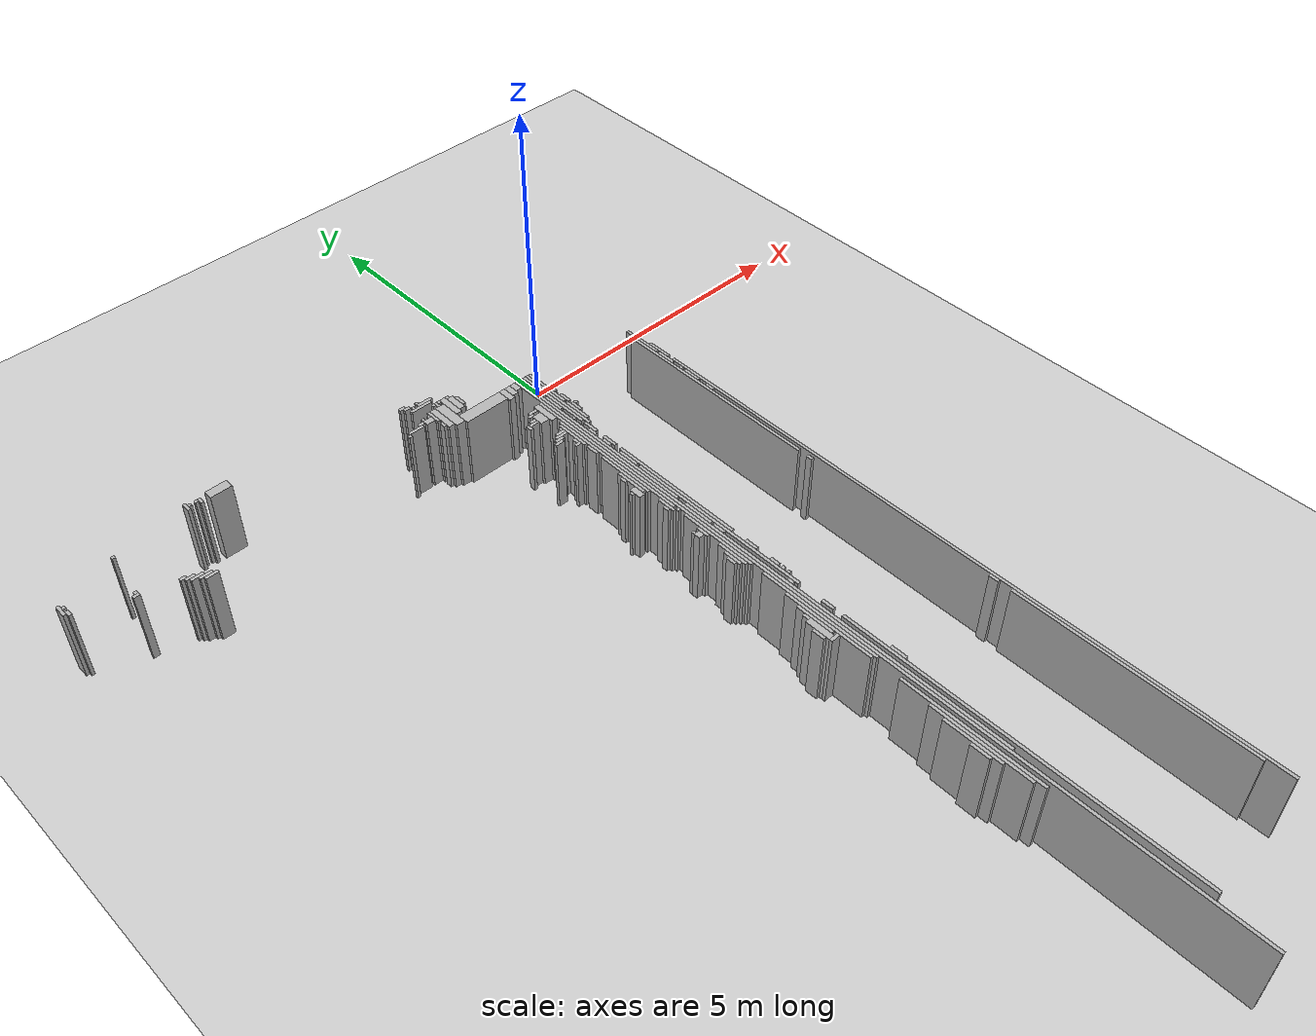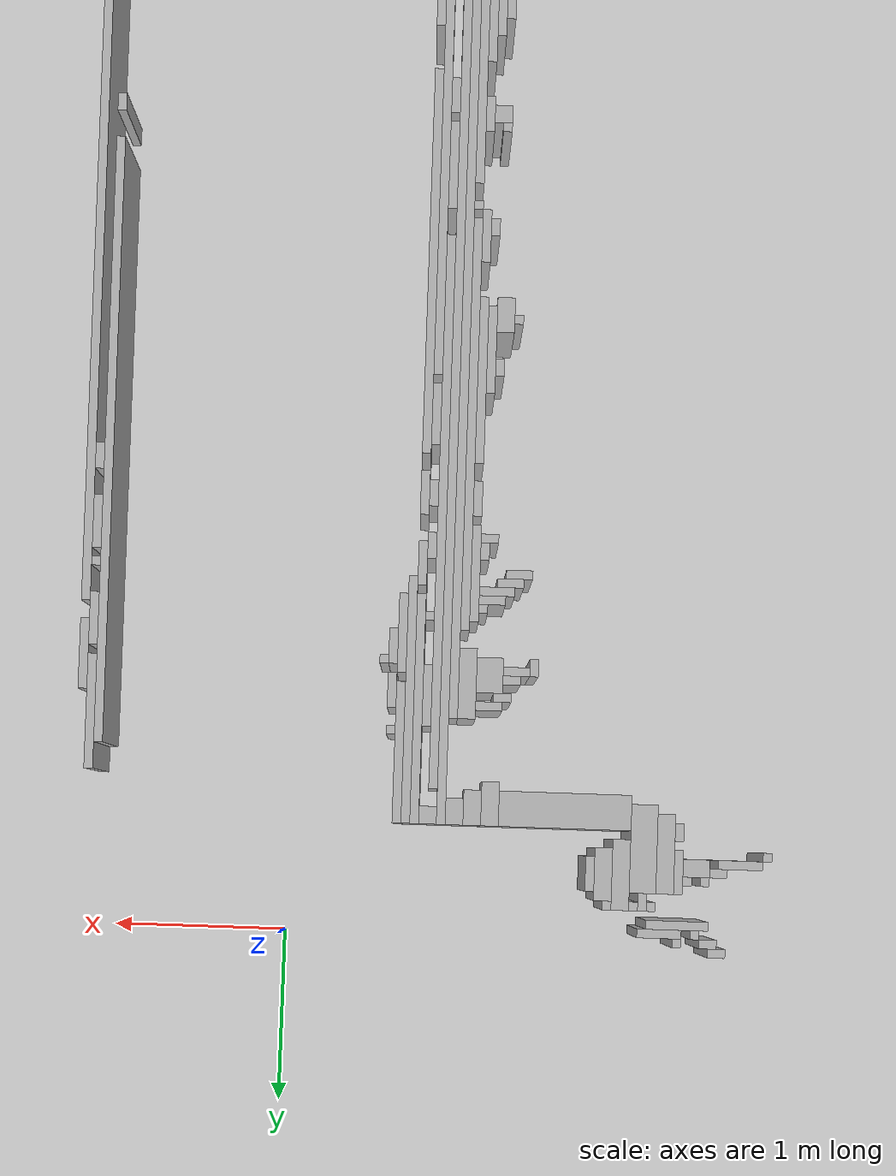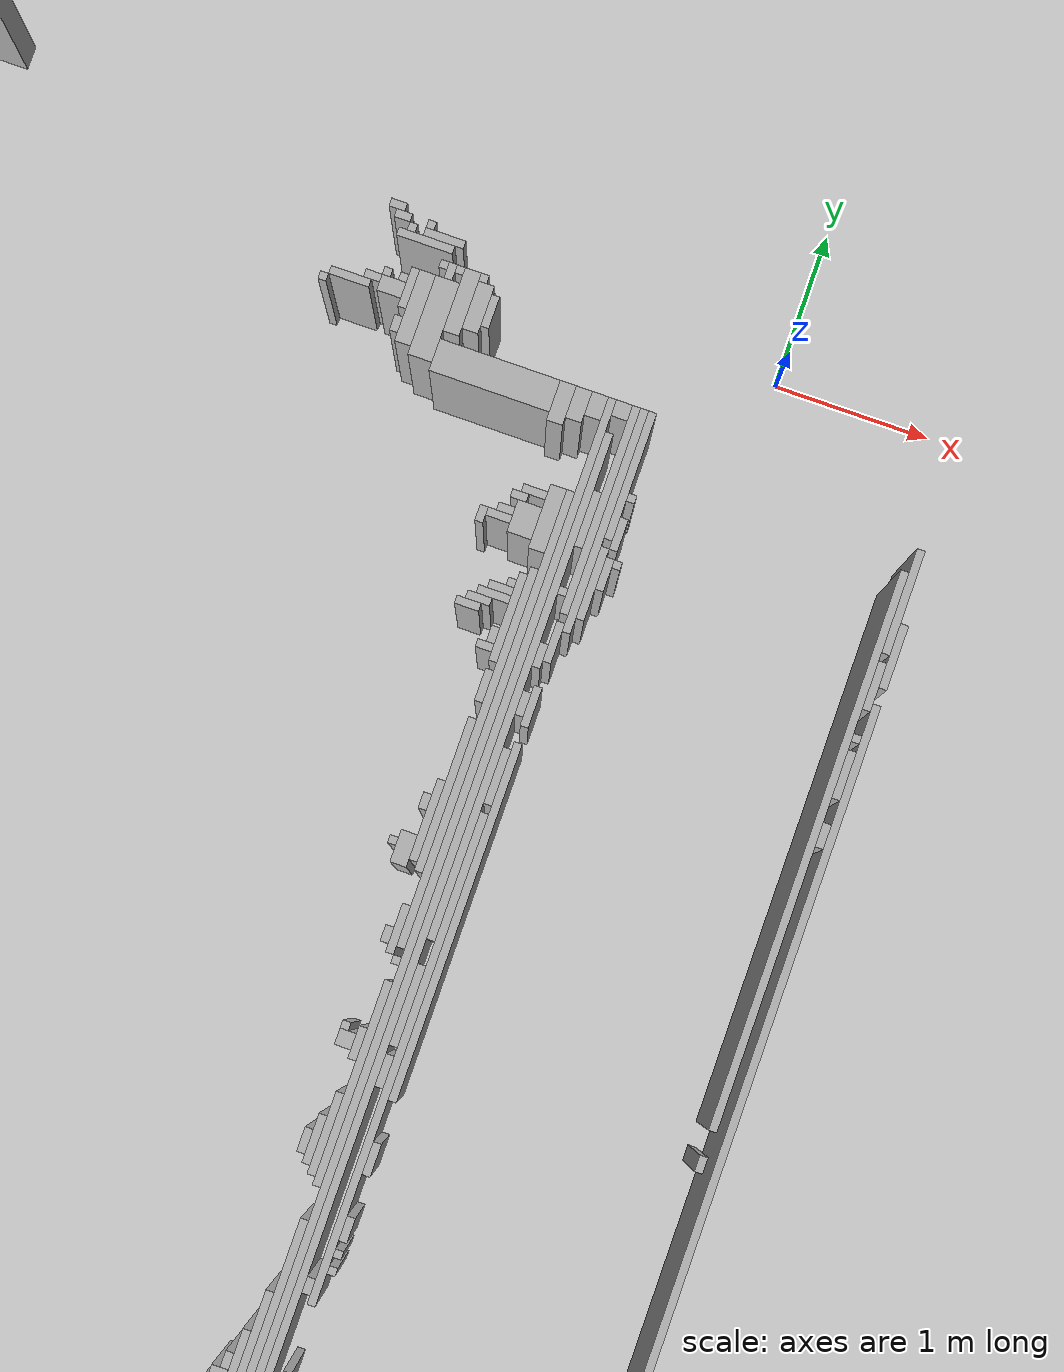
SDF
<sdf version="1.6">
 <world name="d10_floor">
  <include><uri>model://sun</uri></include>
  <include><uri>model://ground_plane</uri></include>
  <model name="d10_walls">
   <static>true</static>
   <link name="w726">
    <pose>-0.950 -7.245 0.60 0 0 0</pose>
    <collision name="c"><geometry><box><size>0.050 12.000 1.20</size></box></geometry></collision>
    <visual name="v">
     <geometry><box><size>0.050 12.000 1.20</size></box></geometry>
     <material><ambient>0.6 0.6 0.6 1</ambient><diffuse>0.7 0.7 0.7 1</diffuse></material>
    </visual>
   </link>
   <link name="w893">
    <pose>-0.800 -9.670 0.60 0 0 0</pose>
    <collision name="c"><geometry><box><size>0.050 5.450 1.20</size></box></geometry></collision>
    <visual name="v">
     <geometry><box><size>0.050 5.450 1.20</size></box></geometry>
     <material><ambient>0.6 0.6 0.6 1</ambient><diffuse>0.7 0.7 0.7 1</diffuse></material>
    </visual>
   </link>
   <link name="w902">
    <pose>1.150 -7.020 0.60 0 0 0</pose>
    <collision name="c"><geometry><box><size>0.050 10.350 1.20</size></box></geometry></collision>
    <visual name="v">
     <geometry><box><size>0.050 10.350 1.20</size></box></geometry>
     <material><ambient>0.6 0.6 0.6 1</ambient><diffuse>0.7 0.7 0.7 1</diffuse></material>
    </visual>
   </link>
   <link name="w935">
    <pose>1.100 -9.970 0.60 0 0 0</pose>
    <collision name="c"><geometry><box><size>0.050 3.650 1.20</size></box></geometry></collision>
    <visual name="v">
     <geometry><box><size>0.050 3.650 1.20</size></box></geometry>
     <material><ambient>0.6 0.6 0.6 1</ambient><diffuse>0.7 0.7 0.7 1</diffuse></material>
    </visual>
   </link>
   <link name="w1038">
    <pose>-1.050 -9.195 0.60 0 0 0</pose>
    <collision name="c"><geometry><box><size>0.050 2.200 1.20</size></box></geometry></collision>
    <visual name="v">
     <geometry><box><size>0.050 2.200 1.20</size></box></geometry>
     <material><ambient>0.6 0.6 0.6 1</ambient><diffuse>0.7 0.7 0.7 1</diffuse></material>
    </visual>
   </link>
   <link name="w1042">
    <pose>-1.100 -9.370 0.60 0 0 0</pose>
    <collision name="c"><geometry><box><size>0.050 1.550 1.20</size></box></geometry></collision>
    <visual name="v">
     <geometry><box><size>0.050 1.550 1.20</size></box></geometry>
     <material><ambient>0.6 0.6 0.6 1</ambient><diffuse>0.7 0.7 0.7 1</diffuse></material>
    </visual>
   </link>
   <link name="w1051">
    <pose>-1.150 -9.295 0.60 0 0 0</pose>
    <collision name="c"><geometry><box><size>0.050 0.900 1.20</size></box></geometry></collision>
    <visual name="v">
     <geometry><box><size>0.050 0.900 1.20</size></box></geometry>
     <material><ambient>0.6 0.6 0.6 1</ambient><diffuse>0.7 0.7 0.7 1</diffuse></material>
    </visual>
   </link>
   <link name="w1052">
    <pose>-0.900 -5.170 0.60 0 0 0</pose>
    <collision name="c"><geometry><box><size>0.050 9.050 1.20</size></box></geometry></collision>
    <visual name="v">
     <geometry><box><size>0.050 9.050 1.20</size></box></geometry>
     <material><ambient>0.6 0.6 0.6 1</ambient><diffuse>0.7 0.7 0.7 1</diffuse></material>
    </visual>
   </link>
   <link name="w1055">
    <pose>-1.200 -9.445 0.60 0 0 0</pose>
    <collision name="c"><geometry><box><size>0.050 0.300 1.20</size></box></geometry></collision>
    <visual name="v">
     <geometry><box><size>0.050 0.300 1.20</size></box></geometry>
     <material><ambient>0.6 0.6 0.6 1</ambient><diffuse>0.7 0.7 0.7 1</diffuse></material>
    </visual>
   </link>
   <link name="w1078">
    <pose>-0.750 -7.820 0.60 0 0 0</pose>
    <collision name="c"><geometry><box><size>0.050 0.250 1.20</size></box></geometry></collision>
    <visual name="v">
     <geometry><box><size>0.050 0.250 1.20</size></box></geometry>
     <material><ambient>0.6 0.6 0.6 1</ambient><diffuse>0.7 0.7 0.7 1</diffuse></material>
    </visual>
   </link>
   <link name="w1079">
    <pose>1.100 -7.870 0.60 0 0 0</pose>
    <collision name="c"><geometry><box><size>0.050 0.150 1.20</size></box></geometry></collision>
    <visual name="v">
     <geometry><box><size>0.050 0.150 1.20</size></box></geometry>
     <material><ambient>0.6 0.6 0.6 1</ambient><diffuse>0.7 0.7 0.7 1</diffuse></material>
    </visual>
   </link>
   <link name="w1087">
    <pose>-1.000 -6.720 0.60 0 0 0</pose>
    <collision name="c"><geometry><box><size>0.050 1.950 1.20</size></box></geometry></collision>
    <visual name="v">
     <geometry><box><size>0.050 1.950 1.20</size></box></geometry>
     <material><ambient>0.6 0.6 0.6 1</ambient><diffuse>0.7 0.7 0.7 1</diffuse></material>
    </visual>
   </link>
   <link name="w1089">
    <pose>-1.050 -6.920 0.60 0 0 0</pose>
    <collision name="c"><geometry><box><size>0.050 1.450 1.20</size></box></geometry></collision>
    <visual name="v">
     <geometry><box><size>0.050 1.450 1.20</size></box></geometry>
     <material><ambient>0.6 0.6 0.6 1</ambient><diffuse>0.7 0.7 0.7 1</diffuse></material>
    </visual>
   </link>
   <link name="w1101">
    <pose>-1.150 -7.120 0.60 0 0 0</pose>
    <collision name="c"><geometry><box><size>0.150 0.050 1.20</size></box></geometry></collision>
    <visual name="v">
     <geometry><box><size>0.150 0.050 1.20</size></box></geometry>
     <material><ambient>0.6 0.6 0.6 1</ambient><diffuse>0.7 0.7 0.7 1</diffuse></material>
    </visual>
   </link>
   <link name="w1103">
    <pose>-1.175 -6.895 0.60 0 0 0</pose>
    <collision name="c"><geometry><box><size>0.100 0.400 1.20</size></box></geometry></collision>
    <visual name="v">
     <geometry><box><size>0.100 0.400 1.20</size></box></geometry>
     <material><ambient>0.6 0.6 0.6 1</ambient><diffuse>0.7 0.7 0.7 1</diffuse></material>
    </visual>
   </link>
   <link name="w1104">
    <pose>-1.250 -6.945 0.60 0 0 0</pose>
    <collision name="c"><geometry><box><size>0.050 0.200 1.20</size></box></geometry></collision>
    <visual name="v">
     <geometry><box><size>0.050 0.200 1.20</size></box></geometry>
     <material><ambient>0.6 0.6 0.6 1</ambient><diffuse>0.7 0.7 0.7 1</diffuse></material>
    </visual>
   </link>
   <link name="w1105">
    <pose>-1.100 -6.745 0.60 0 0 0</pose>
    <collision name="c"><geometry><box><size>0.050 0.600 1.20</size></box></geometry></collision>
    <visual name="v">
     <geometry><box><size>0.050 0.600 1.20</size></box></geometry>
     <material><ambient>0.6 0.6 0.6 1</ambient><diffuse>0.7 0.7 0.7 1</diffuse></material>
    </visual>
   </link>
   <link name="w1109">
    <pose>-0.800 -6.695 0.60 0 0 0</pose>
    <collision name="c"><geometry><box><size>0.050 0.200 1.20</size></box></geometry></collision>
    <visual name="v">
     <geometry><box><size>0.050 0.200 1.20</size></box></geometry>
     <material><ambient>0.6 0.6 0.6 1</ambient><diffuse>0.7 0.7 0.7 1</diffuse></material>
    </visual>
   </link>
   <link name="w1112">
    <pose>-1.150 -6.645 0.60 0 0 0</pose>
    <collision name="c"><geometry><box><size>0.050 0.100 1.20</size></box></geometry></collision>
    <visual name="v">
     <geometry><box><size>0.050 0.100 1.20</size></box></geometry>
     <material><ambient>0.6 0.6 0.6 1</ambient><diffuse>0.7 0.7 0.7 1</diffuse></material>
    </visual>
   </link>
   <link name="w1120">
    <pose>-0.800 -4.695 0.60 0 0 0</pose>
    <collision name="c"><geometry><box><size>0.050 3.000 1.20</size></box></geometry></collision>
    <visual name="v">
     <geometry><box><size>0.050 3.000 1.20</size></box></geometry>
     <material><ambient>0.6 0.6 0.6 1</ambient><diffuse>0.7 0.7 0.7 1</diffuse></material>
    </visual>
   </link>
   <link name="w1122">
    <pose>-0.850 -6.095 0.60 0 0 0</pose>
    <collision name="c"><geometry><box><size>0.050 0.100 1.20</size></box></geometry></collision>
    <visual name="v">
     <geometry><box><size>0.050 0.100 1.20</size></box></geometry>
     <material><ambient>0.6 0.6 0.6 1</ambient><diffuse>0.7 0.7 0.7 1</diffuse></material>
    </visual>
   </link>
   <link name="w1126">
    <pose>-0.750 -5.970 0.60 0 0 0</pose>
    <collision name="c"><geometry><box><size>0.050 0.050 1.20</size></box></geometry></collision>
    <visual name="v">
     <geometry><box><size>0.050 0.050 1.20</size></box></geometry>
     <material><ambient>0.6 0.6 0.6 1</ambient><diffuse>0.7 0.7 0.7 1</diffuse></material>
    </visual>
   </link>
   <link name="w1128">
    <pose>-0.750 -5.870 0.60 0 0 0</pose>
    <collision name="c"><geometry><box><size>0.050 0.050 1.20</size></box></geometry></collision>
    <visual name="v">
     <geometry><box><size>0.050 0.050 1.20</size></box></geometry>
     <material><ambient>0.6 0.6 0.6 1</ambient><diffuse>0.7 0.7 0.7 1</diffuse></material>
    </visual>
   </link>
   <link name="w1131">
    <pose>-0.750 -5.720 0.60 0 0 0</pose>
    <collision name="c"><geometry><box><size>0.050 0.150 1.20</size></box></geometry></collision>
    <visual name="v">
     <geometry><box><size>0.050 0.150 1.20</size></box></geometry>
     <material><ambient>0.6 0.6 0.6 1</ambient><diffuse>0.7 0.7 0.7 1</diffuse></material>
    </visual>
   </link>
   <link name="w1135">
    <pose>-1.000 -4.920 0.60 0 0 0</pose>
    <collision name="c"><geometry><box><size>0.050 1.250 1.20</size></box></geometry></collision>
    <visual name="v">
     <geometry><box><size>0.050 1.250 1.20</size></box></geometry>
     <material><ambient>0.6 0.6 0.6 1</ambient><diffuse>0.7 0.7 0.7 1</diffuse></material>
    </visual>
   </link>
   <link name="w1137">
    <pose>-1.050 -5.245 0.60 0 0 0</pose>
    <collision name="c"><geometry><box><size>0.050 0.500 1.20</size></box></geometry></collision>
    <visual name="v">
     <geometry><box><size>0.050 0.500 1.20</size></box></geometry>
     <material><ambient>0.6 0.6 0.6 1</ambient><diffuse>0.7 0.7 0.7 1</diffuse></material>
    </visual>
   </link>
   <link name="w1139">
    <pose>-1.100 -5.295 0.60 0 0 0</pose>
    <collision name="c"><geometry><box><size>0.050 0.300 1.20</size></box></geometry></collision>
    <visual name="v">
     <geometry><box><size>0.050 0.300 1.20</size></box></geometry>
     <material><ambient>0.6 0.6 0.6 1</ambient><diffuse>0.7 0.7 0.7 1</diffuse></material>
    </visual>
   </link>
   <link name="w1141">
    <pose>-1.150 -5.320 0.60 0 0 0</pose>
    <collision name="c"><geometry><box><size>0.050 0.150 1.20</size></box></geometry></collision>
    <visual name="v">
     <geometry><box><size>0.050 0.150 1.20</size></box></geometry>
     <material><ambient>0.6 0.6 0.6 1</ambient><diffuse>0.7 0.7 0.7 1</diffuse></material>
    </visual>
   </link>
   <link name="w1142">
    <pose>-0.750 -5.295 0.60 0 0 0</pose>
    <collision name="c"><geometry><box><size>0.050 0.200 1.20</size></box></geometry></collision>
    <visual name="v">
     <geometry><box><size>0.050 0.200 1.20</size></box></geometry>
     <material><ambient>0.6 0.6 0.6 1</ambient><diffuse>0.7 0.7 0.7 1</diffuse></material>
    </visual>
   </link>
   <link name="w1152">
    <pose>-0.750 -3.845 0.60 0 0 0</pose>
    <collision name="c"><geometry><box><size>0.050 2.200 1.20</size></box></geometry></collision>
    <visual name="v">
     <geometry><box><size>0.050 2.200 1.20</size></box></geometry>
     <material><ambient>0.6 0.6 0.6 1</ambient><diffuse>0.7 0.7 0.7 1</diffuse></material>
    </visual>
   </link>
   <link name="w1156">
    <pose>-0.850 -4.795 0.60 0 0 0</pose>
    <collision name="c"><geometry><box><size>0.050 0.200 1.20</size></box></geometry></collision>
    <visual name="v">
     <geometry><box><size>0.050 0.200 1.20</size></box></geometry>
     <material><ambient>0.6 0.6 0.6 1</ambient><diffuse>0.7 0.7 0.7 1</diffuse></material>
    </visual>
   </link>
   <link name="w1158">
    <pose>-1.050 -4.695 0.60 0 0 0</pose>
    <collision name="c"><geometry><box><size>0.050 0.200 1.20</size></box></geometry></collision>
    <visual name="v">
     <geometry><box><size>0.050 0.200 1.20</size></box></geometry>
     <material><ambient>0.6 0.6 0.6 1</ambient><diffuse>0.7 0.7 0.7 1</diffuse></material>
    </visual>
   </link>
   <link name="w1162">
    <pose>-1.125 -4.695 0.60 0 0 0</pose>
    <collision name="c"><geometry><box><size>0.100 0.100 1.20</size></box></geometry></collision>
    <visual name="v">
     <geometry><box><size>0.100 0.100 1.20</size></box></geometry>
     <material><ambient>0.6 0.6 0.6 1</ambient><diffuse>0.7 0.7 0.7 1</diffuse></material>
    </visual>
   </link>
   <link name="w1163">
    <pose>1.050 -4.695 0.60 0 0 0</pose>
    <collision name="c"><geometry><box><size>0.050 0.100 1.20</size></box></geometry></collision>
    <visual name="v">
     <geometry><box><size>0.050 0.100 1.20</size></box></geometry>
     <material><ambient>0.6 0.6 0.6 1</ambient><diffuse>0.7 0.7 0.7 1</diffuse></material>
    </visual>
   </link>
   <link name="w1165">
    <pose>-1.150 -4.620 0.60 0 0 0</pose>
    <collision name="c"><geometry><box><size>0.050 0.050 1.20</size></box></geometry></collision>
    <visual name="v">
     <geometry><box><size>0.050 0.050 1.20</size></box></geometry>
     <material><ambient>0.6 0.6 0.6 1</ambient><diffuse>0.7 0.7 0.7 1</diffuse></material>
    </visual>
   </link>
   <link name="w1166">
    <pose>-0.850 -4.395 0.60 0 0 0</pose>
    <collision name="c"><geometry><box><size>0.050 0.500 1.20</size></box></geometry></collision>
    <visual name="v">
     <geometry><box><size>0.050 0.500 1.20</size></box></geometry>
     <material><ambient>0.6 0.6 0.6 1</ambient><diffuse>0.7 0.7 0.7 1</diffuse></material>
    </visual>
   </link>
   <link name="w1170">
    <pose>1.050 -2.770 0.60 0 0 0</pose>
    <collision name="c"><geometry><box><size>0.050 3.450 1.20</size></box></geometry></collision>
    <visual name="v">
     <geometry><box><size>0.050 3.450 1.20</size></box></geometry>
     <material><ambient>0.6 0.6 0.6 1</ambient><diffuse>0.7 0.7 0.7 1</diffuse></material>
    </visual>
   </link>
   <link name="w1175">
    <pose>-1.000 -4.170 0.60 0 0 0</pose>
    <collision name="c"><geometry><box><size>0.050 0.050 1.20</size></box></geometry></collision>
    <visual name="v">
     <geometry><box><size>0.050 0.050 1.20</size></box></geometry>
     <material><ambient>0.6 0.6 0.6 1</ambient><diffuse>0.7 0.7 0.7 1</diffuse></material>
    </visual>
   </link>
   <link name="w1178">
    <pose>-1.050 -3.995 0.60 0 0 0</pose>
    <collision name="c"><geometry><box><size>0.050 0.300 1.20</size></box></geometry></collision>
    <visual name="v">
     <geometry><box><size>0.050 0.300 1.20</size></box></geometry>
     <material><ambient>0.6 0.6 0.6 1</ambient><diffuse>0.7 0.7 0.7 1</diffuse></material>
    </visual>
   </link>
   <link name="w1180">
    <pose>-1.100 -4.045 0.60 0 0 0</pose>
    <collision name="c"><geometry><box><size>0.050 0.100 1.20</size></box></geometry></collision>
    <visual name="v">
     <geometry><box><size>0.050 0.100 1.20</size></box></geometry>
     <material><ambient>0.6 0.6 0.6 1</ambient><diffuse>0.7 0.7 0.7 1</diffuse></material>
    </visual>
   </link>
   <link name="w1181">
    <pose>-1.000 -2.920 0.60 0 0 0</pose>
    <collision name="c"><geometry><box><size>0.050 2.350 1.20</size></box></geometry></collision>
    <visual name="v">
     <geometry><box><size>0.050 2.350 1.20</size></box></geometry>
     <material><ambient>0.6 0.6 0.6 1</ambient><diffuse>0.7 0.7 0.7 1</diffuse></material>
    </visual>
   </link>
   <link name="w1185">
    <pose>-0.850 -2.420 0.60 0 0 0</pose>
    <collision name="c"><geometry><box><size>0.050 3.150 1.20</size></box></geometry></collision>
    <visual name="v">
     <geometry><box><size>0.050 3.150 1.20</size></box></geometry>
     <material><ambient>0.6 0.6 0.6 1</ambient><diffuse>0.7 0.7 0.7 1</diffuse></material>
    </visual>
   </link>
   <link name="w1195">
    <pose>-1.175 -3.545 0.60 0 0 0</pose>
    <collision name="c"><geometry><box><size>0.100 0.200 1.20</size></box></geometry></collision>
    <visual name="v">
     <geometry><box><size>0.100 0.200 1.20</size></box></geometry>
     <material><ambient>0.6 0.6 0.6 1</ambient><diffuse>0.7 0.7 0.7 1</diffuse></material>
    </visual>
   </link>
   <link name="w1196">
    <pose>-1.050 -3.170 0.60 0 0 0</pose>
    <collision name="c"><geometry><box><size>0.050 0.950 1.20</size></box></geometry></collision>
    <visual name="v">
     <geometry><box><size>0.050 0.950 1.20</size></box></geometry>
     <material><ambient>0.6 0.6 0.6 1</ambient><diffuse>0.7 0.7 0.7 1</diffuse></material>
    </visual>
   </link>
   <link name="w1198">
    <pose>-1.100 -3.345 0.60 0 0 0</pose>
    <collision name="c"><geometry><box><size>0.050 0.500 1.20</size></box></geometry></collision>
    <visual name="v">
     <geometry><box><size>0.050 0.500 1.20</size></box></geometry>
     <material><ambient>0.6 0.6 0.6 1</ambient><diffuse>0.7 0.7 0.7 1</diffuse></material>
    </visual>
   </link>
   <link name="w1200">
    <pose>-1.250 -3.520 0.60 0 0 0</pose>
    <collision name="c"><geometry><box><size>0.050 0.050 1.20</size></box></geometry></collision>
    <visual name="v">
     <geometry><box><size>0.050 0.050 1.20</size></box></geometry>
     <material><ambient>0.6 0.6 0.6 1</ambient><diffuse>0.7 0.7 0.7 1</diffuse></material>
    </visual>
   </link>
   <link name="w1207">
    <pose>-1.150 -3.245 0.60 0 0 0</pose>
    <collision name="c"><geometry><box><size>0.050 0.100 1.20</size></box></geometry></collision>
    <visual name="v">
     <geometry><box><size>0.050 0.100 1.20</size></box></geometry>
     <material><ambient>0.6 0.6 0.6 1</ambient><diffuse>0.7 0.7 0.7 1</diffuse></material>
    </visual>
   </link>
   <link name="w1209">
    <pose>-0.800 -2.970 0.60 0 0 0</pose>
    <collision name="c"><geometry><box><size>0.050 0.350 1.20</size></box></geometry></collision>
    <visual name="v">
     <geometry><box><size>0.050 0.350 1.20</size></box></geometry>
     <material><ambient>0.6 0.6 0.6 1</ambient><diffuse>0.7 0.7 0.7 1</diffuse></material>
    </visual>
   </link>
   <link name="w1225">
    <pose>1.100 -2.670 0.60 0 0 0</pose>
    <collision name="c"><geometry><box><size>0.050 0.150 1.20</size></box></geometry></collision>
    <visual name="v">
     <geometry><box><size>0.050 0.150 1.20</size></box></geometry>
     <material><ambient>0.6 0.6 0.6 1</ambient><diffuse>0.7 0.7 0.7 1</diffuse></material>
    </visual>
   </link>
   <link name="w1235">
    <pose>-0.750 -2.520 0.60 0 0 0</pose>
    <collision name="c"><geometry><box><size>0.050 0.250 1.20</size></box></geometry></collision>
    <visual name="v">
     <geometry><box><size>0.050 0.250 1.20</size></box></geometry>
     <material><ambient>0.6 0.6 0.6 1</ambient><diffuse>0.7 0.7 0.7 1</diffuse></material>
    </visual>
   </link>
   <link name="w1241">
    <pose>-1.050 -2.495 0.60 0 0 0</pose>
    <collision name="c"><geometry><box><size>0.050 0.200 1.20</size></box></geometry></collision>
    <visual name="v">
     <geometry><box><size>0.050 0.200 1.20</size></box></geometry>
     <material><ambient>0.6 0.6 0.6 1</ambient><diffuse>0.7 0.7 0.7 1</diffuse></material>
    </visual>
   </link>
   <link name="w1242">
    <pose>-0.800 -2.520 0.60 0 0 0</pose>
    <collision name="c"><geometry><box><size>0.050 0.150 1.20</size></box></geometry></collision>
    <visual name="v">
     <geometry><box><size>0.050 0.150 1.20</size></box></geometry>
     <material><ambient>0.6 0.6 0.6 1</ambient><diffuse>0.7 0.7 0.7 1</diffuse></material>
    </visual>
   </link>
   <link name="w1252">
    <pose>1.100 -2.295 0.60 0 0 0</pose>
    <collision name="c"><geometry><box><size>0.050 0.300 1.20</size></box></geometry></collision>
    <visual name="v">
     <geometry><box><size>0.050 0.300 1.20</size></box></geometry>
     <material><ambient>0.6 0.6 0.6 1</ambient><diffuse>0.7 0.7 0.7 1</diffuse></material>
    </visual>
   </link>
   <link name="w1261">
    <pose>-1.050 -2.070 0.60 0 0 0</pose>
    <collision name="c"><geometry><box><size>0.050 0.550 1.20</size></box></geometry></collision>
    <visual name="v">
     <geometry><box><size>0.050 0.550 1.20</size></box></geometry>
     <material><ambient>0.6 0.6 0.6 1</ambient><diffuse>0.7 0.7 0.7 1</diffuse></material>
    </visual>
   </link>
   <link name="w1267">
    <pose>-1.125 -2.270 0.60 0 0 0</pose>
    <collision name="c"><geometry><box><size>0.100 0.050 1.20</size></box></geometry></collision>
    <visual name="v">
     <geometry><box><size>0.100 0.050 1.20</size></box></geometry>
     <material><ambient>0.6 0.6 0.6 1</ambient><diffuse>0.7 0.7 0.7 1</diffuse></material>
    </visual>
   </link>
   <link name="w1268">
    <pose>-0.800 -2.220 0.60 0 0 0</pose>
    <collision name="c"><geometry><box><size>0.050 0.150 1.20</size></box></geometry></collision>
    <visual name="v">
     <geometry><box><size>0.050 0.150 1.20</size></box></geometry>
     <material><ambient>0.6 0.6 0.6 1</ambient><diffuse>0.7 0.7 0.7 1</diffuse></material>
    </visual>
   </link>
   <link name="w1272">
    <pose>-1.100 -2.195 0.60 0 0 0</pose>
    <collision name="c"><geometry><box><size>0.050 0.100 1.20</size></box></geometry></collision>
    <visual name="v">
     <geometry><box><size>0.050 0.100 1.20</size></box></geometry>
     <material><ambient>0.6 0.6 0.6 1</ambient><diffuse>0.7 0.7 0.7 1</diffuse></material>
    </visual>
   </link>
   <link name="w1273">
    <pose>-0.750 -2.120 0.60 0 0 0</pose>
    <collision name="c"><geometry><box><size>0.050 0.250 1.20</size></box></geometry></collision>
    <visual name="v">
     <geometry><box><size>0.050 0.250 1.20</size></box></geometry>
     <material><ambient>0.6 0.6 0.6 1</ambient><diffuse>0.7 0.7 0.7 1</diffuse></material>
    </visual>
   </link>
   <link name="w1279">
    <pose>-1.300 -2.070 0.60 0 0 0</pose>
    <collision name="c"><geometry><box><size>0.150 0.050 1.20</size></box></geometry></collision>
    <visual name="v">
     <geometry><box><size>0.150 0.050 1.20</size></box></geometry>
     <material><ambient>0.6 0.6 0.6 1</ambient><diffuse>0.7 0.7 0.7 1</diffuse></material>
    </visual>
   </link>
   <link name="w1280">
    <pose>1.100 -2.070 0.60 0 0 0</pose>
    <collision name="c"><geometry><box><size>0.050 0.050 1.20</size></box></geometry></collision>
    <visual name="v">
     <geometry><box><size>0.050 0.050 1.20</size></box></geometry>
     <material><ambient>0.6 0.6 0.6 1</ambient><diffuse>0.7 0.7 0.7 1</diffuse></material>
    </visual>
   </link>
   <link name="w1281">
    <pose>-1.250 -2.020 0.60 0 0 0</pose>
    <collision name="c"><geometry><box><size>0.150 0.050 1.20</size></box></geometry></collision>
    <visual name="v">
     <geometry><box><size>0.150 0.050 1.20</size></box></geometry>
     <material><ambient>0.6 0.6 0.6 1</ambient><diffuse>0.7 0.7 0.7 1</diffuse></material>
    </visual>
   </link>
   <link name="w1282">
    <pose>-0.700 -1.345 0.60 0 0 0</pose>
    <collision name="c"><geometry><box><size>0.050 1.400 1.20</size></box></geometry></collision>
    <visual name="v">
     <geometry><box><size>0.050 1.400 1.20</size></box></geometry>
     <material><ambient>0.6 0.6 0.6 1</ambient><diffuse>0.7 0.7 0.7 1</diffuse></material>
    </visual>
   </link>
   <link name="w1284">
    <pose>-1.175 -1.970 0.60 0 0 0</pose>
    <collision name="c"><geometry><box><size>0.200 0.050 1.20</size></box></geometry></collision>
    <visual name="v">
     <geometry><box><size>0.200 0.050 1.20</size></box></geometry>
     <material><ambient>0.6 0.6 0.6 1</ambient><diffuse>0.7 0.7 0.7 1</diffuse></material>
    </visual>
   </link>
   <link name="w1286">
    <pose>-1.150 -1.920 0.60 0 0 0</pose>
    <collision name="c"><geometry><box><size>0.150 0.050 1.20</size></box></geometry></collision>
    <visual name="v">
     <geometry><box><size>0.150 0.050 1.20</size></box></geometry>
     <material><ambient>0.6 0.6 0.6 1</ambient><diffuse>0.7 0.7 0.7 1</diffuse></material>
    </visual>
   </link>
   <link name="w1287">
    <pose>-0.750 -1.295 0.60 0 0 0</pose>
    <collision name="c"><geometry><box><size>0.050 1.300 1.20</size></box></geometry></collision>
    <visual name="v">
     <geometry><box><size>0.050 1.300 1.20</size></box></geometry>
     <material><ambient>0.6 0.6 0.6 1</ambient><diffuse>0.7 0.7 0.7 1</diffuse></material>
    </visual>
   </link>
   <link name="w1288">
    <pose>-0.650 -1.720 0.60 0 0 0</pose>
    <collision name="c"><geometry><box><size>0.050 0.450 1.20</size></box></geometry></collision>
    <visual name="v">
     <geometry><box><size>0.050 0.450 1.20</size></box></geometry>
     <material><ambient>0.6 0.6 0.6 1</ambient><diffuse>0.7 0.7 0.7 1</diffuse></material>
    </visual>
   </link>
   <link name="w1289">
    <pose>-1.100 -1.870 0.60 0 0 0</pose>
    <collision name="c"><geometry><box><size>0.050 0.050 1.20</size></box></geometry></collision>
    <visual name="v">
     <geometry><box><size>0.050 0.050 1.20</size></box></geometry>
     <material><ambient>0.6 0.6 0.6 1</ambient><diffuse>0.7 0.7 0.7 1</diffuse></material>
    </visual>
   </link>
   <link name="w1290">
    <pose>1.100 -1.745 0.60 0 0 0</pose>
    <collision name="c"><geometry><box><size>0.050 0.300 1.20</size></box></geometry></collision>
    <visual name="v">
     <geometry><box><size>0.050 0.300 1.20</size></box></geometry>
     <material><ambient>0.6 0.6 0.6 1</ambient><diffuse>0.7 0.7 0.7 1</diffuse></material>
    </visual>
   </link>
   <link name="w1291">
    <pose>-0.800 -1.820 0.60 0 0 0</pose>
    <collision name="c"><geometry><box><size>0.050 0.050 1.20</size></box></geometry></collision>
    <visual name="v">
     <geometry><box><size>0.050 0.050 1.20</size></box></geometry>
     <material><ambient>0.6 0.6 0.6 1</ambient><diffuse>0.7 0.7 0.7 1</diffuse></material>
    </visual>
   </link>
   <link name="w1294">
    <pose>-0.600 -1.645 0.60 0 0 0</pose>
    <collision name="c"><geometry><box><size>0.050 0.200 1.20</size></box></geometry></collision>
    <visual name="v">
     <geometry><box><size>0.050 0.200 1.20</size></box></geometry>
     <material><ambient>0.6 0.6 0.6 1</ambient><diffuse>0.7 0.7 0.7 1</diffuse></material>
    </visual>
   </link>
   <link name="w1295">
    <pose>1.150 -1.545 0.60 0 0 0</pose>
    <collision name="c"><geometry><box><size>0.050 0.400 1.20</size></box></geometry></collision>
    <visual name="v">
     <geometry><box><size>0.050 0.400 1.20</size></box></geometry>
     <material><ambient>0.6 0.6 0.6 1</ambient><diffuse>0.7 0.7 0.7 1</diffuse></material>
    </visual>
   </link>
   <link name="w1298">
    <pose>-1.025 -1.445 0.60 0 0 0</pose>
    <collision name="c"><geometry><box><size>0.100 0.400 1.20</size></box></geometry></collision>
    <visual name="v">
     <geometry><box><size>0.100 0.400 1.20</size></box></geometry>
     <material><ambient>0.6 0.6 0.6 1</ambient><diffuse>0.7 0.7 0.7 1</diffuse></material>
    </visual>
   </link>
   <link name="w1301">
    <pose>-1.400 -1.545 0.60 0 0 0</pose>
    <collision name="c"><geometry><box><size>0.050 0.100 1.20</size></box></geometry></collision>
    <visual name="v">
     <geometry><box><size>0.050 0.100 1.20</size></box></geometry>
     <material><ambient>0.6 0.6 0.6 1</ambient><diffuse>0.7 0.7 0.7 1</diffuse></material>
    </visual>
   </link>
   <link name="w1302">
    <pose>-1.150 -1.495 0.60 0 0 0</pose>
    <collision name="c"><geometry><box><size>0.150 0.200 1.20</size></box></geometry></collision>
    <visual name="v">
     <geometry><box><size>0.150 0.200 1.20</size></box></geometry>
     <material><ambient>0.6 0.6 0.6 1</ambient><diffuse>0.7 0.7 0.7 1</diffuse></material>
    </visual>
   </link>
   <link name="w1303">
    <pose>-0.550 -1.570 0.60 0 0 0</pose>
    <collision name="c"><geometry><box><size>0.050 0.050 1.20</size></box></geometry></collision>
    <visual name="v">
     <geometry><box><size>0.050 0.050 1.20</size></box></geometry>
     <material><ambient>0.6 0.6 0.6 1</ambient><diffuse>0.7 0.7 0.7 1</diffuse></material>
    </visual>
   </link>
   <link name="w1307">
    <pose>-1.300 -1.520 0.60 0 0 0</pose>
    <collision name="c"><geometry><box><size>0.150 0.050 1.20</size></box></geometry></collision>
    <visual name="v">
     <geometry><box><size>0.150 0.050 1.20</size></box></geometry>
     <material><ambient>0.6 0.6 0.6 1</ambient><diffuse>0.7 0.7 0.7 1</diffuse></material>
    </visual>
   </link>
   <link name="w1308">
    <pose>-0.800 -1.370 0.60 0 0 0</pose>
    <collision name="c"><geometry><box><size>0.050 0.350 1.20</size></box></geometry></collision>
    <visual name="v">
     <geometry><box><size>0.050 0.350 1.20</size></box></geometry>
     <material><ambient>0.6 0.6 0.6 1</ambient><diffuse>0.7 0.7 0.7 1</diffuse></material>
    </visual>
   </link>
   <link name="w1309">
    <pose>1.100 -1.220 0.60 0 0 0</pose>
    <collision name="c"><geometry><box><size>0.050 0.650 1.20</size></box></geometry></collision>
    <visual name="v">
     <geometry><box><size>0.050 0.650 1.20</size></box></geometry>
     <material><ambient>0.6 0.6 0.6 1</ambient><diffuse>0.7 0.7 0.7 1</diffuse></material>
    </visual>
   </link>
   <link name="w1312">
    <pose>-1.275 -1.470 0.60 0 0 0</pose>
    <collision name="c"><geometry><box><size>0.100 0.050 1.20</size></box></geometry></collision>
    <visual name="v">
     <geometry><box><size>0.100 0.050 1.20</size></box></geometry>
     <material><ambient>0.6 0.6 0.6 1</ambient><diffuse>0.7 0.7 0.7 1</diffuse></material>
    </visual>
   </link>
   <link name="w1313">
    <pose>-0.600 -1.395 0.60 0 0 0</pose>
    <collision name="c"><geometry><box><size>0.050 0.200 1.20</size></box></geometry></collision>
    <visual name="v">
     <geometry><box><size>0.050 0.200 1.20</size></box></geometry>
     <material><ambient>0.6 0.6 0.6 1</ambient><diffuse>0.7 0.7 0.7 1</diffuse></material>
    </visual>
   </link>
   <link name="w1320">
    <pose>-0.650 -1.045 0.60 0 0 0</pose>
    <collision name="c"><geometry><box><size>0.050 0.800 1.20</size></box></geometry></collision>
    <visual name="v">
     <geometry><box><size>0.050 0.800 1.20</size></box></geometry>
     <material><ambient>0.6 0.6 0.6 1</ambient><diffuse>0.7 0.7 0.7 1</diffuse></material>
    </visual>
   </link>
   <link name="w1326">
    <pose>-1.225 -1.370 0.60 0 0 0</pose>
    <collision name="c"><geometry><box><size>0.100 0.050 1.20</size></box></geometry></collision>
    <visual name="v">
     <geometry><box><size>0.100 0.050 1.20</size></box></geometry>
     <material><ambient>0.6 0.6 0.6 1</ambient><diffuse>0.7 0.7 0.7 1</diffuse></material>
    </visual>
   </link>
   <link name="w1332">
    <pose>-1.150 -1.320 0.60 0 0 0</pose>
    <collision name="c"><geometry><box><size>0.150 0.050 1.20</size></box></geometry></collision>
    <visual name="v">
     <geometry><box><size>0.150 0.050 1.20</size></box></geometry>
     <material><ambient>0.6 0.6 0.6 1</ambient><diffuse>0.7 0.7 0.7 1</diffuse></material>
    </visual>
   </link>
   <link name="w1350">
    <pose>-0.600 -1.170 0.60 0 0 0</pose>
    <collision name="c"><geometry><box><size>0.050 0.050 1.20</size></box></geometry></collision>
    <visual name="v">
     <geometry><box><size>0.050 0.050 1.20</size></box></geometry>
     <material><ambient>0.6 0.6 0.6 1</ambient><diffuse>0.7 0.7 0.7 1</diffuse></material>
    </visual>
   </link>
   <link name="w1455">
    <pose>-6.225 -0.870 0.60 0 0 0</pose>
    <collision name="c"><geometry><box><size>0.200 0.050 1.20</size></box></geometry></collision>
    <visual name="v">
     <geometry><box><size>0.200 0.050 1.20</size></box></geometry>
     <material><ambient>0.6 0.6 0.6 1</ambient><diffuse>0.7 0.7 0.7 1</diffuse></material>
    </visual>
   </link>
   <link name="w1456">
    <pose>-1.175 -0.770 0.60 0 0 0</pose>
    <collision name="c"><geometry><box><size>0.100 0.250 1.20</size></box></geometry></collision>
    <visual name="v">
     <geometry><box><size>0.100 0.250 1.20</size></box></geometry>
     <material><ambient>0.6 0.6 0.6 1</ambient><diffuse>0.7 0.7 0.7 1</diffuse></material>
    </visual>
   </link>
   <link name="w1474">
    <pose>-6.275 -0.820 0.60 0 0 0</pose>
    <collision name="c"><geometry><box><size>0.200 0.050 1.20</size></box></geometry></collision>
    <visual name="v">
     <geometry><box><size>0.200 0.050 1.20</size></box></geometry>
     <material><ambient>0.6 0.6 0.6 1</ambient><diffuse>0.7 0.7 0.7 1</diffuse></material>
    </visual>
   </link>
   <link name="w1475">
    <pose>-1.600 -0.745 0.60 0 0 0</pose>
    <collision name="c"><geometry><box><size>0.750 0.200 1.20</size></box></geometry></collision>
    <visual name="v">
     <geometry><box><size>0.750 0.200 1.20</size></box></geometry>
     <material><ambient>0.6 0.6 0.6 1</ambient><diffuse>0.7 0.7 0.7 1</diffuse></material>
    </visual>
   </link>
   <link name="w1476">
    <pose>-1.075 -0.745 0.60 0 0 0</pose>
    <collision name="c"><geometry><box><size>0.100 0.200 1.20</size></box></geometry></collision>
    <visual name="v">
     <geometry><box><size>0.100 0.200 1.20</size></box></geometry>
     <material><ambient>0.6 0.6 0.6 1</ambient><diffuse>0.7 0.7 0.7 1</diffuse></material>
    </visual>
   </link>
   <link name="w1489">
    <pose>-6.375 -0.770 0.60 0 0 0</pose>
    <collision name="c"><geometry><box><size>0.200 0.050 1.20</size></box></geometry></collision>
    <visual name="v">
     <geometry><box><size>0.200 0.050 1.20</size></box></geometry>
     <material><ambient>0.6 0.6 0.6 1</ambient><diffuse>0.7 0.7 0.7 1</diffuse></material>
    </visual>
   </link>
   <link name="w1490">
    <pose>-2.050 -0.545 0.60 0 0 0</pose>
    <collision name="c"><geometry><box><size>0.150 0.500 1.20</size></box></geometry></collision>
    <visual name="v">
     <geometry><box><size>0.150 0.500 1.20</size></box></geometry>
     <material><ambient>0.6 0.6 0.6 1</ambient><diffuse>0.7 0.7 0.7 1</diffuse></material>
    </visual>
   </link>
   <link name="w1491">
    <pose>-0.975 -0.720 0.60 0 0 0</pose>
    <collision name="c"><geometry><box><size>0.100 0.150 1.20</size></box></geometry></collision>
    <visual name="v">
     <geometry><box><size>0.100 0.150 1.20</size></box></geometry>
     <material><ambient>0.6 0.6 0.6 1</ambient><diffuse>0.7 0.7 0.7 1</diffuse></material>
    </visual>
   </link>
   <link name="w1495">
    <pose>-6.450 -0.720 0.60 0 0 0</pose>
    <collision name="c"><geometry><box><size>0.150 0.050 1.20</size></box></geometry></collision>
    <visual name="v">
     <geometry><box><size>0.150 0.050 1.20</size></box></geometry>
     <material><ambient>0.6 0.6 0.6 1</ambient><diffuse>0.7 0.7 0.7 1</diffuse></material>
    </visual>
   </link>
   <link name="w1496">
    <pose>-2.175 -0.520 0.60 0 0 0</pose>
    <collision name="c"><geometry><box><size>0.100 0.450 1.20</size></box></geometry></collision>
    <visual name="v">
     <geometry><box><size>0.100 0.450 1.20</size></box></geometry>
     <material><ambient>0.6 0.6 0.6 1</ambient><diffuse>0.7 0.7 0.7 1</diffuse></material>
    </visual>
   </link>
   <link name="w1497">
    <pose>-0.825 -0.695 0.60 0 0 0</pose>
    <collision name="c"><geometry><box><size>0.100 0.100 1.20</size></box></geometry></collision>
    <visual name="v">
     <geometry><box><size>0.100 0.100 1.20</size></box></geometry>
     <material><ambient>0.6 0.6 0.6 1</ambient><diffuse>0.7 0.7 0.7 1</diffuse></material>
    </visual>
   </link>
   <link name="w1500">
    <pose>-6.525 -0.670 0.60 0 0 0</pose>
    <collision name="c"><geometry><box><size>0.100 0.050 1.20</size></box></geometry></collision>
    <visual name="v">
     <geometry><box><size>0.100 0.050 1.20</size></box></geometry>
     <material><ambient>0.6 0.6 0.6 1</ambient><diffuse>0.7 0.7 0.7 1</diffuse></material>
    </visual>
   </link>
   <link name="w1501">
    <pose>-2.250 -0.645 0.60 0 0 0</pose>
    <collision name="c"><geometry><box><size>0.050 0.100 1.20</size></box></geometry></collision>
    <visual name="v">
     <geometry><box><size>0.050 0.100 1.20</size></box></geometry>
     <material><ambient>0.6 0.6 0.6 1</ambient><diffuse>0.7 0.7 0.7 1</diffuse></material>
    </visual>
   </link>
   <link name="w1504">
    <pose>-1.925 -0.395 0.60 0 0 0</pose>
    <collision name="c"><geometry><box><size>0.100 0.400 1.20</size></box></geometry></collision>
    <visual name="v">
     <geometry><box><size>0.100 0.400 1.20</size></box></geometry>
     <material><ambient>0.6 0.6 0.6 1</ambient><diffuse>0.7 0.7 0.7 1</diffuse></material>
    </visual>
   </link>
   <link name="w1506">
    <pose>-7.125 -0.520 0.60 0 0 0</pose>
    <collision name="c"><geometry><box><size>0.100 0.050 1.20</size></box></geometry></collision>
    <visual name="v">
     <geometry><box><size>0.100 0.050 1.20</size></box></geometry>
     <material><ambient>0.6 0.6 0.6 1</ambient><diffuse>0.7 0.7 0.7 1</diffuse></material>
    </visual>
   </link>
   <link name="w1507">
    <pose>-2.750 -0.520 0.60 0 0 0</pose>
    <collision name="c"><geometry><box><size>0.050 0.050 1.20</size></box></geometry></collision>
    <visual name="v">
     <geometry><box><size>0.050 0.050 1.20</size></box></geometry>
     <material><ambient>0.6 0.6 0.6 1</ambient><diffuse>0.7 0.7 0.7 1</diffuse></material>
    </visual>
   </link>
   <link name="w1508">
    <pose>-2.250 -0.420 0.60 0 0 0</pose>
    <collision name="c"><geometry><box><size>0.050 0.250 1.20</size></box></geometry></collision>
    <visual name="v">
     <geometry><box><size>0.050 0.250 1.20</size></box></geometry>
     <material><ambient>0.6 0.6 0.6 1</ambient><diffuse>0.7 0.7 0.7 1</diffuse></material>
    </visual>
   </link>
   <link name="w1509">
    <pose>-1.825 -0.395 0.60 0 0 0</pose>
    <collision name="c"><geometry><box><size>0.100 0.300 1.20</size></box></geometry></collision>
    <visual name="v">
     <geometry><box><size>0.100 0.300 1.20</size></box></geometry>
     <material><ambient>0.6 0.6 0.6 1</ambient><diffuse>0.7 0.7 0.7 1</diffuse></material>
    </visual>
   </link>
   <link name="w1511">
    <pose>-7.100 -0.470 0.60 0 0 0</pose>
    <collision name="c"><geometry><box><size>0.050 0.050 1.20</size></box></geometry></collision>
    <visual name="v">
     <geometry><box><size>0.050 0.050 1.20</size></box></geometry>
     <material><ambient>0.6 0.6 0.6 1</ambient><diffuse>0.7 0.7 0.7 1</diffuse></material>
    </visual>
   </link>
   <link name="w1512">
    <pose>-2.600 -0.470 0.60 0 0 0</pose>
    <collision name="c"><geometry><box><size>0.250 0.050 1.20</size></box></geometry></collision>
    <visual name="v">
     <geometry><box><size>0.250 0.050 1.20</size></box></geometry>
     <material><ambient>0.6 0.6 0.6 1</ambient><diffuse>0.7 0.7 0.7 1</diffuse></material>
    </visual>
   </link>
   <link name="w1513">
    <pose>-2.350 -0.445 0.60 0 0 0</pose>
    <collision name="c"><geometry><box><size>0.150 0.100 1.20</size></box></geometry></collision>
    <visual name="v">
     <geometry><box><size>0.150 0.100 1.20</size></box></geometry>
     <material><ambient>0.6 0.6 0.6 1</ambient><diffuse>0.7 0.7 0.7 1</diffuse></material>
    </visual>
   </link>
   <link name="w1514">
    <pose>-1.750 -0.395 0.60 0 0 0</pose>
    <collision name="c"><geometry><box><size>0.050 0.200 1.20</size></box></geometry></collision>
    <visual name="v">
     <geometry><box><size>0.050 0.200 1.20</size></box></geometry>
     <material><ambient>0.6 0.6 0.6 1</ambient><diffuse>0.7 0.7 0.7 1</diffuse></material>
    </visual>
   </link>
   <link name="w1516">
    <pose>-2.475 -0.420 0.60 0 0 0</pose>
    <collision name="c"><geometry><box><size>0.100 0.050 1.20</size></box></geometry></collision>
    <visual name="v">
     <geometry><box><size>0.100 0.050 1.20</size></box></geometry>
     <material><ambient>0.6 0.6 0.6 1</ambient><diffuse>0.7 0.7 0.7 1</diffuse></material>
    </visual>
   </link>
   <link name="w1517">
    <pose>-2.400 -0.370 0.60 0 0 0</pose>
    <collision name="c"><geometry><box><size>0.050 0.050 1.20</size></box></geometry></collision>
    <visual name="v">
     <geometry><box><size>0.050 0.050 1.20</size></box></geometry>
     <material><ambient>0.6 0.6 0.6 1</ambient><diffuse>0.7 0.7 0.7 1</diffuse></material>
    </visual>
   </link>
   <link name="w1518">
    <pose>-2.300 -0.370 0.60 0 0 0</pose>
    <collision name="c"><geometry><box><size>0.050 0.050 1.20</size></box></geometry></collision>
    <visual name="v">
     <geometry><box><size>0.050 0.050 1.20</size></box></geometry>
     <material><ambient>0.6 0.6 0.6 1</ambient><diffuse>0.7 0.7 0.7 1</diffuse></material>
    </visual>
   </link>
   <link name="w1519">
    <pose>-2.050 -0.245 0.60 0 0 0</pose>
    <collision name="c"><geometry><box><size>0.050 0.100 1.20</size></box></geometry></collision>
    <visual name="v">
     <geometry><box><size>0.050 0.100 1.20</size></box></geometry>
     <material><ambient>0.6 0.6 0.6 1</ambient><diffuse>0.7 0.7 0.7 1</diffuse></material>
    </visual>
   </link>
   <link name="w1520">
    <pose>-7.900 -0.195 0.60 0 0 0</pose>
    <collision name="c"><geometry><box><size>0.050 0.100 1.20</size></box></geometry></collision>
    <visual name="v">
     <geometry><box><size>0.050 0.100 1.20</size></box></geometry>
     <material><ambient>0.6 0.6 0.6 1</ambient><diffuse>0.7 0.7 0.7 1</diffuse></material>
    </visual>
   </link>
   <link name="w1521">
    <pose>-2.100 -0.220 0.60 0 0 0</pose>
    <collision name="c"><geometry><box><size>0.050 0.050 1.20</size></box></geometry></collision>
    <visual name="v">
     <geometry><box><size>0.050 0.050 1.20</size></box></geometry>
     <material><ambient>0.6 0.6 0.6 1</ambient><diffuse>0.7 0.7 0.7 1</diffuse></material>
    </visual>
   </link>
   <link name="w1522">
    <pose>-2.000 -0.220 0.60 0 0 0</pose>
    <collision name="c"><geometry><box><size>0.050 0.050 1.20</size></box></geometry></collision>
    <visual name="v">
     <geometry><box><size>0.050 0.050 1.20</size></box></geometry>
     <material><ambient>0.6 0.6 0.6 1</ambient><diffuse>0.7 0.7 0.7 1</diffuse></material>
    </visual>
   </link>
   <link name="w1523">
    <pose>-1.850 -0.220 0.60 0 0 0</pose>
    <collision name="c"><geometry><box><size>0.050 0.050 1.20</size></box></geometry></collision>
    <visual name="v">
     <geometry><box><size>0.050 0.050 1.20</size></box></geometry>
     <material><ambient>0.6 0.6 0.6 1</ambient><diffuse>0.7 0.7 0.7 1</diffuse></material>
    </visual>
   </link>
   <link name="w1525">
    <pose>-7.950 -0.095 0.60 0 0 0</pose>
    <collision name="c"><geometry><box><size>0.050 0.200 1.20</size></box></geometry></collision>
    <visual name="v">
     <geometry><box><size>0.050 0.200 1.20</size></box></geometry>
     <material><ambient>0.6 0.6 0.6 1</ambient><diffuse>0.7 0.7 0.7 1</diffuse></material>
    </visual>
   </link>
   <link name="w1527">
    <pose>-2.250 -0.120 0.60 0 0 0</pose>
    <collision name="c"><geometry><box><size>0.350 0.050 1.20</size></box></geometry></collision>
    <visual name="v">
     <geometry><box><size>0.350 0.050 1.20</size></box></geometry>
     <material><ambient>0.6 0.6 0.6 1</ambient><diffuse>0.7 0.7 0.7 1</diffuse></material>
    </visual>
   </link>
   <link name="w1528">
    <pose>-7.900 -0.070 0.60 0 0 0</pose>
    <collision name="c"><geometry><box><size>0.050 0.050 1.20</size></box></geometry></collision>
    <visual name="v">
     <geometry><box><size>0.050 0.050 1.20</size></box></geometry>
     <material><ambient>0.6 0.6 0.6 1</ambient><diffuse>0.7 0.7 0.7 1</diffuse></material>
    </visual>
   </link>
   <link name="w1529">
    <pose>-2.350 -0.070 0.60 0 0 0</pose>
    <collision name="c"><geometry><box><size>0.050 0.050 1.20</size></box></geometry></collision>
    <visual name="v">
     <geometry><box><size>0.050 0.050 1.20</size></box></geometry>
     <material><ambient>0.6 0.6 0.6 1</ambient><diffuse>0.7 0.7 0.7 1</diffuse></material>
    </visual>
   </link>
   <link name="w1530">
    <pose>-2.150 -0.070 0.60 0 0 0</pose>
    <collision name="c"><geometry><box><size>0.250 0.050 1.20</size></box></geometry></collision>
    <visual name="v">
     <geometry><box><size>0.250 0.050 1.20</size></box></geometry>
     <material><ambient>0.6 0.6 0.6 1</ambient><diffuse>0.7 0.7 0.7 1</diffuse></material>
    </visual>
   </link>
   <link name="w1531">
    <pose>-2.425 -0.020 0.60 0 0 0</pose>
    <collision name="c"><geometry><box><size>0.100 0.050 1.20</size></box></geometry></collision>
    <visual name="v">
     <geometry><box><size>0.100 0.050 1.20</size></box></geometry>
     <material><ambient>0.6 0.6 0.6 1</ambient><diffuse>0.7 0.7 0.7 1</diffuse></material>
    </visual>
   </link>
   <link name="w1532">
    <pose>-2.250 -0.020 0.60 0 0 0</pose>
    <collision name="c"><geometry><box><size>0.050 0.050 1.20</size></box></geometry></collision>
    <visual name="v">
     <geometry><box><size>0.050 0.050 1.20</size></box></geometry>
     <material><ambient>0.6 0.6 0.6 1</ambient><diffuse>0.7 0.7 0.7 1</diffuse></material>
    </visual>
   </link>
   <link name="w1533">
    <pose>-2.475 0.030 0.60 0 0 0</pose>
    <collision name="c"><geometry><box><size>0.100 0.050 1.20</size></box></geometry></collision>
    <visual name="v">
     <geometry><box><size>0.100 0.050 1.20</size></box></geometry>
     <material><ambient>0.6 0.6 0.6 1</ambient><diffuse>0.7 0.7 0.7 1</diffuse></material>
    </visual>
   </link>
   <link name="w1536">
    <pose>-7.000 0.280 0.60 0 0 0</pose>
    <collision name="c"><geometry><box><size>0.050 0.050 1.20</size></box></geometry></collision>
    <visual name="v">
     <geometry><box><size>0.050 0.050 1.20</size></box></geometry>
     <material><ambient>0.6 0.6 0.6 1</ambient><diffuse>0.7 0.7 0.7 1</diffuse></material>
    </visual>
   </link>
   <link name="w1537">
    <pose>-5.800 0.430 0.60 0 0 0</pose>
    <collision name="c"><geometry><box><size>0.050 0.150 1.20</size></box></geometry></collision>
    <visual name="v">
     <geometry><box><size>0.050 0.150 1.20</size></box></geometry>
     <material><ambient>0.6 0.6 0.6 1</ambient><diffuse>0.7 0.7 0.7 1</diffuse></material>
    </visual>
   </link>
   <link name="w1538">
    <pose>-5.600 0.405 0.60 0 0 0</pose>
    <collision name="c"><geometry><box><size>0.050 0.100 1.20</size></box></geometry></collision>
    <visual name="v">
     <geometry><box><size>0.050 0.100 1.20</size></box></geometry>
     <material><ambient>0.6 0.6 0.6 1</ambient><diffuse>0.7 0.7 0.7 1</diffuse></material>
    </visual>
   </link>
   <link name="w1539">
    <pose>-5.300 0.430 0.60 0 0 0</pose>
    <collision name="c"><geometry><box><size>0.350 0.150 1.20</size></box></geometry></collision>
    <visual name="v">
     <geometry><box><size>0.350 0.150 1.20</size></box></geometry>
     <material><ambient>0.6 0.6 0.6 1</ambient><diffuse>0.7 0.7 0.7 1</diffuse></material>
    </visual>
   </link>
   <link name="w1542">
    <pose>-5.750 0.430 0.60 0 0 0</pose>
    <collision name="c"><geometry><box><size>0.050 0.050 1.20</size></box></geometry></collision>
    <visual name="v">
     <geometry><box><size>0.050 0.050 1.20</size></box></geometry>
     <material><ambient>0.6 0.6 0.6 1</ambient><diffuse>0.7 0.7 0.7 1</diffuse></material>
    </visual>
   </link>
   <link name="w1543">
    <pose>-5.650 0.430 0.60 0 0 0</pose>
    <collision name="c"><geometry><box><size>0.050 0.050 1.20</size></box></geometry></collision>
    <visual name="v">
     <geometry><box><size>0.050 0.050 1.20</size></box></geometry>
     <material><ambient>0.6 0.6 0.6 1</ambient><diffuse>0.7 0.7 0.7 1</diffuse></material>
    </visual>
   </link>
  </model>
 </world>
</sdf>
